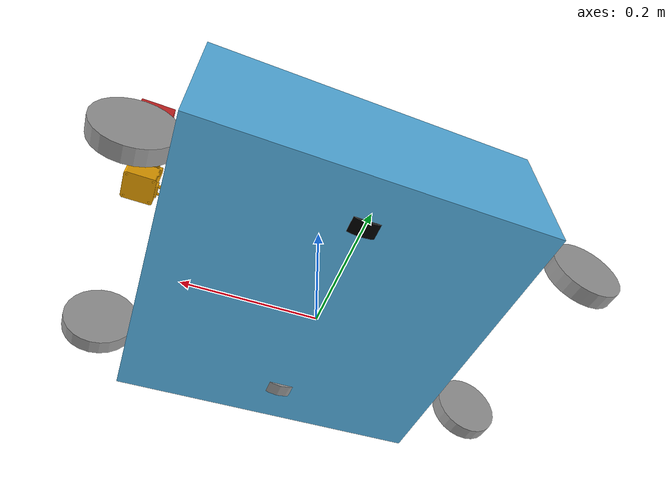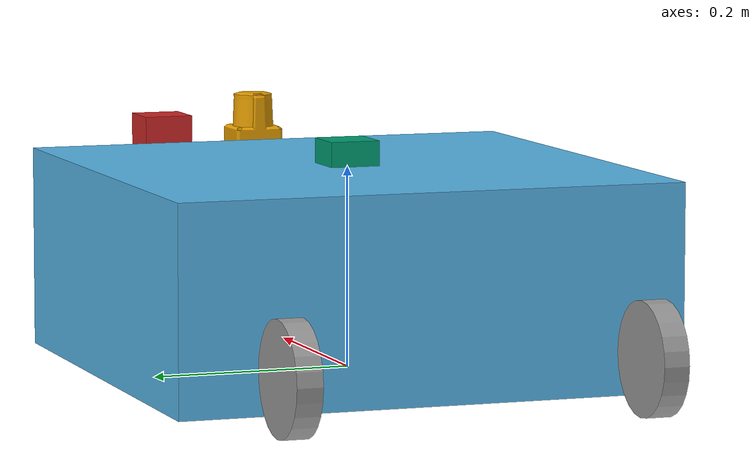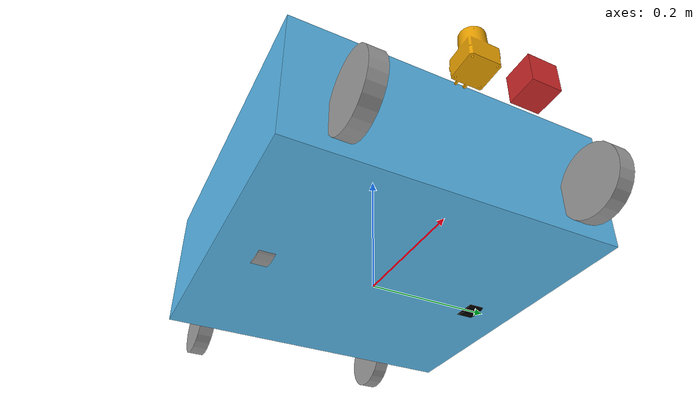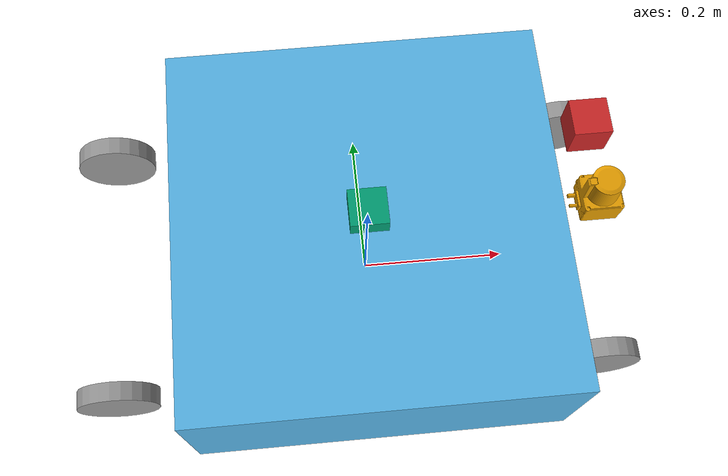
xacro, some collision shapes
<?xml version="1.0"?>
<!-- Revolute-Revolute Manipulator -->
<robot name="ugv" xmlns:xacro="http://www.ros.org/wiki/xacro">

  <!-- Constants for robot dimensions -->
  <xacro:property name="PI" value="3.1415926535897931"/>
  <xacro:property name="mass" value="5" />
  <xacro:property name="length" value="0.813" />
  <xacro:property name="width" value="0.5045" />
  <xacro:property name="height" value="0.202" />
  <xacro:property name="cylinder_length" value="0.025" />
  <xacro:property name="cylinder_radius" value="0.055" />
  <xacro:property name="width_diff" value="0.05" />
  <xacro:property name="height_diff" value="0.05" />
  <xacro:property name="length_diff" value="0.05" />

  <!-- Import all Gazebo-customization elements, including Gazebo colors -->
  <xacro:include filename="$(find testing)/urdf/ugv.gazebo" />
  <!-- Import Rviz colors -->
  <xacro:include filename="$(find testing)/urdf/materials.xacro" />

  <!-- Used for fixing robot to Gazebo 'base_link' -->
  <link name="odom"/>

  <joint name="footprint_joint" type="fixed">
    <origin xyz="0 0 0" rpy="0 0 0"/>
    <parent link="odom"/>
    <child link="chassis"/>
  </joint>

  <!-- Base Link -->
  <link name="chassis">
    <collision>
      <origin xyz="0 0 ${height/2.0}" rpy="0 0 0"/>
      <geometry>
	<box size="${width} ${width} ${height}"/>
      </geometry>
    </collision>

    <visual>
      <origin xyz="0 0 ${height/2.0}" rpy="0 0 0"/>
      <geometry>
        <mesh filename="package://testing/meshes/UGV.stl"/>
      </geometry>
    </visual>

    <inertial>
      <origin xyz="0 0 ${height/2.0}" rpy="0 0 0"/>
      <mass value="${mass}"/>
      <inertia
	  ixx="${mass / 12.0 * (width*width + height*height)}" ixy="0.0" ixz="0.0"
	  iyy="${mass / 12.0 * (height*height + width*width)}" iyz="0.0"
	  izz="${mass / 12.0 * (width*width + width*width)}"/>
    </inertial>
  </link>

  <!-- LEFT WHEEL -->
  <joint name="left_wheel_joint" type="continuous">
    <parent link="chassis"/>
    <child link="left_wheel"/>
    <origin xyz="0.0 ${width/2 - cylinder_length - width_diff} ${height/2 - height_diff}" rpy="0 0 0"/>
    <axis xyz="0 1 0"/>
    <dynamics damping="0.7"/>
  </joint>

  <link name="left_wheel">
    <collision>
      <origin xyz="0 0 0" rpy="${PI/2.0} 0 0"/>
      <geometry>
  	<cylinder radius="${cylinder_radius}" length="${cylinder_length}"/>
      </geometry>
    </collision>

    <visual>
      <origin xyz="0 0 0" rpy="${PI/2.0} 0 0"/>
      <geometry>
  	<cylinder radius="${cylinder_radius}" length="${cylinder_length}"/>
      </geometry>
      <material name="black"/>
    </visual>

    <inertial>
      <origin xyz="0 0 0" rpy="${PI/2.0} 0 0"/>
      <mass value="0.5"/>
      <inertia
  	  ixx="0.0" ixy="0.0" ixz="0.0" iyy="0.0" iyz="0.0" izz="0.0"/>
    </inertial>
  </link>

  <!-- RIGHT WHEEL -->
  <joint name="right_wheel_joint" type="continuous">
    <parent link="chassis"/>
    <child link="right_wheel"/>
    <origin xyz="0.0 ${-width/2 + cylinder_length + width_diff} ${height/2 - height_diff}" rpy="0 0 0"/>
    <axis xyz="0 1 0"/>
    <dynamics damping="0.7"/>
  </joint>

  <link name="right_wheel">
    <collision>
      <origin xyz="0 0 0" rpy="${PI/2.0} 0 0"/>
      <geometry>
  	<cylinder radius="${cylinder_radius}" length="${cylinder_length}"/>
      </geometry>
    </collision>

    <visual>
      <origin xyz="0 0 0" rpy="${PI/2.0} 0 0"/>
      <geometry>
  	<cylinder radius="${cylinder_radius}" length="${cylinder_length}"/>
      </geometry>
    </visual>

    <inertial>
      <origin xyz="0 0 0" rpy="${PI/2.0} 0 0"/>
      <mass value="0.5"/>
      <inertia
  	  ixx="0.0" ixy="0.0" ixz="0.0" iyy="0.0" iyz="0.0" izz="0.0"/>
    </inertial>
  </link>

  <!-- LEFT WHEEL FRONT -->
  <joint name="left_wheel_front_joint" type="continuous">
    <parent link="chassis"/>
    <child link="left_wheel_front"/>
    <origin xyz="${length/2 - cylinder_radius - length_diff} ${width/2 - cylinder_length - width_diff} ${height/2 - height_diff}" rpy="0 0 0"/>
    <axis xyz="0 1 0"/>
    <dynamics damping="0.7"/>
  </joint>

  <link name="left_wheel_front">
    <collision>
      <origin xyz="0 0 0" rpy="${PI/2.0} 0 0"/>
      <geometry>
  	<cylinder radius="${cylinder_radius}" length="${cylinder_length}"/>
      </geometry>
    </collision>

    <visual>
      <origin xyz="0 0 0" rpy="${PI/2.0} 0 0"/>
      <geometry>
  	<cylinder radius="${cylinder_radius}" length="${cylinder_length}"/>
      </geometry>
    </visual>

    <inertial>
      <origin xyz="0 0 0" rpy="${PI/2.0} 0 0"/>
      <mass value="0.5"/>
      <inertia
  	  ixx="0.0" ixy="0.0" ixz="0.0" iyy="0.0" iyz="0.0" izz="0.0"/>
    </inertial>
  </link>

  <!-- RIGHT WHEEL FRONT -->
  <joint name="right_wheel_front_joint" type="continuous">
    <parent link="chassis"/>
    <child link="right_wheel_front"/>
    <origin xyz="${length/2 - cylinder_radius - length_diff} ${-width/2 + cylinder_length + width_diff} ${height/2 - height_diff}" rpy="0 0 0"/>
    <axis xyz="0 1 0"/>
    <dynamics damping="0.7"/>
  </joint>

  <link name="right_wheel_front">
    <collision>
      <origin xyz="0 0 0" rpy="${PI/2.0} 0 0"/>
      <geometry>
  	<cylinder radius="${cylinder_radius}" length="${cylinder_length}"/>
      </geometry>
    </collision>

    <visual>
      <origin xyz="0 0 0" rpy="${PI/2.0} 0 0"/>
      <geometry>
  	<cylinder radius="${cylinder_radius}" length="${cylinder_length}"/>
      </geometry>
    </visual>

    <inertial>
      <origin xyz="0 0 0" rpy="${PI/2.0} 0 0"/>
      <mass value="0.5"/>
      <inertia
  	  ixx="0.0" ixy="0.0" ixz="0.0" iyy="0.0" iyz="0.0" izz="0.0"/>
    </inertial>
  </link>

  <!-- LEFT WHEEL BACK -->
  <joint name="left_wheel_back_joint" type="continuous">
    <parent link="chassis"/>
    <child link="left_wheel_back"/>
    <origin xyz="${-length/2 + cylinder_radius} ${width/2 - cylinder_length - width_diff} ${height/2 - height_diff}" rpy="0 0 0"/>
    <axis xyz="0 1 0"/>
    <dynamics damping="0.7"/>
  </joint>

  <link name="left_wheel_back">
    <collision>
      <origin xyz="0 0 0" rpy="${PI/2.0} 0 0"/>
      <geometry>
  	<cylinder radius="${cylinder_radius}" length="${cylinder_length}"/>
      </geometry>
    </collision>

    <visual>
      <origin xyz="0 0 0" rpy="${PI/2.0} 0 0"/>
      <geometry>
  	<cylinder radius="${cylinder_radius}" length="${cylinder_length}"/>
      </geometry>
    </visual>

    <inertial>
      <origin xyz="0 0 0" rpy="${PI/2.0} 0 0"/>
      <mass value="0.5"/>
      <inertia
  	  ixx="0.0" ixy="0.0" ixz="0.0" iyy="0.0" iyz="0.0" izz="0.0"/>
    </inertial>
  </link>

  <!-- RIGHT WHEEL BACK -->
  <joint name="right_wheel_back_joint" type="continuous">
    <parent link="chassis"/>
    <child link="right_wheel_back"/>
    <origin xyz="${-length/2 + cylinder_radius} ${-width/2 + cylinder_length + width_diff} ${height/2 - height_diff}" rpy="0 0 0"/>
    <axis xyz="0 1 0"/>
    <dynamics damping="0.7"/>
  </joint>

  <link name="right_wheel_back">
    <collision>
      <origin xyz="0 0 0" rpy="${PI/2.0} 0 0"/>
      <geometry>
  	<cylinder radius="${cylinder_radius}" length="${cylinder_length}"/>
      </geometry>
    </collision>

    <visual>
      <origin xyz="0 0 0" rpy="${PI/2.0} 0 0"/>
      <geometry>
  	<cylinder radius="${cylinder_radius}" length="${cylinder_length}"/>
      </geometry>
    </visual>

    <inertial>
      <origin xyz="0 0 0" rpy="${PI/2.0} 0 0"/>
      <mass value="0.5"/>
      <inertia
  	  ixx="0.0" ixy="0.0" ixz="0.0" iyy="0.0" iyz="0.0" izz="0.0"/>
    </inertial>
  </link>

  <!-- HOKUYO LASER -->
  <joint name="hokuyo_joint" type="fixed">
    <axis xyz="0 0 0" />
    <origin xyz="0.3 0 ${height + 0.025}" rpy="0 0 0"/>
    <parent link="chassis"/>
    <child link="hokuyo_link"/>
  </joint>

  <!-- Hokuyo Laser -->
  <link name="hokuyo_link">
    <collision>
      <origin xyz="0 0 -0.025" rpy="0 0 0"/>
      <geometry>
	<box size="0.051 0.051 0.07"/>
      </geometry>
    </collision>

    <visual>
      <origin xyz="0 0 -0.05" rpy="0 0 0"/>
      <geometry>
        <mesh filename="package://testing/meshes/Hokuyo.stl"/>
      </geometry>
    </visual>

    <inertial>
      <mass value="1e-5" />
      <origin xyz="0 0 -0.05" rpy="0 0 0"/>
      <inertia ixx="1e-6" ixy="0" ixz="0" iyy="1e-6" iyz="0" izz="1e-6" />
    </inertial>
  </link>

  <!-- CAMERA -->
  <joint name="camera_joint" type="fixed">
    <axis xyz="0 0 0" />
    <origin xyz="0.3 0.1 ${height}" rpy="0 0 0"/>
    <parent link="chassis"/>
    <child link="camera_link"/>
  </joint>

  <!-- Camera -->
  <link name="camera_link">
    <collision>
      <origin xyz="0 0 0" rpy="0 0 0"/>
      <geometry>
  	<box size="0.05 0.05 0.05"/>
      </geometry>
    </collision>

    <visual>
      <origin xyz="0 0 0" rpy="0 0 0"/>
      <geometry>
  	<box size="0.05 0.05 0.05"/>
      </geometry>
    </visual>

    <inertial>
      <mass value="1e-5" />
      <origin xyz="0 0 0" rpy="0 0 0"/>
      <inertia ixx="1e-6" ixy="0" ixz="0" iyy="1e-6" iyz="0" izz="1e-6" />
    </inertial>
  </link>

  <!-- IMU -->
  <joint name="imu_joint" type="fixed">
    <axis xyz="0 0 0" />
    <origin xyz="0 0 ${height}" rpy="0 0 0"/>
    <parent link="chassis"/>
    <child link="imu_link"/>
  </joint>

  <link name="imu_link">
    <collision>
      <origin xyz="0 0 0" rpy="0 0 0"/>
      <geometry>
  	<box size="0.05 0.05 0.05"/>
      </geometry>
    </collision>

    <visual>
      <origin xyz="0 0 0" rpy="0 0 0"/>
      <geometry>
  	<box size="0.05 0.05 0.05"/>
      </geometry>
    </visual>

    <inertial>
      <mass value="1e-5" />
      <origin xyz="0 0 0" rpy="0 0 0"/>
      <inertia ixx="1e-6" ixy="0" ixz="0" iyy="1e-6" iyz="0" izz="1e-6" />
    </inertial>
  </link>

  <!-- REFERENCES -->

  <gazebo reference="chassis">
    <visual>
      <material>
	<ambient>0.19225 0.19225 0.19225 1.0</ambient>
	<diffuse>0.50754 0.50754 0.50754 1.0</diffuse>
	<specular>0.508273 0.508273 0.508273 1.0</specular>
	<emissive>0.0 0.0 0.0 0.0</emissive>
      </material>
    </visual>
  </gazebo>

  <gazebo reference="left_wheel">
    <material>Gazebo/GreyTransparent</material>
    <mu1 value="10000.0" />
    <mu2 value="10000.0" />
  </gazebo>

  <gazebo reference="right_wheel">
    <material>Gazebo/GreyTransparent</material>
    <mu1 value="10000.0" />
    <mu2 value="10000.0" />
  </gazebo>

  <gazebo reference="left_wheel_front">
    <material>Gazebo/GreyTransparent</material>
    <mu1 value="0.0" />
    <mu2 value="0.0" />
  </gazebo>

  <gazebo reference="right_wheel_front">
    <material>Gazebo/GreyTransparent</material>
    <mu1 value="0.0" />
    <mu2 value="0.0" />
  </gazebo>

  <gazebo reference="left_wheel_back">
    <material>Gazebo/GreyTransparent</material>
    <mu1 value="0.0" />
    <mu2 value="0.0" />
  </gazebo>

  <gazebo reference="right_wheel_back">
    <material>Gazebo/GreyTransparent</material>
    <mu1 value="0.0" />
    <mu2 value="0.0" />
  </gazebo>

  <gazebo reference="camera_link">
    <material>Gazebo/Red</material>
  </gazebo>

  <!-- generate an optical frame http://www.ros.org/reps/rep-0103.html#suffix-frames
      so that ros and opencv can operate on the camera frame correctly -->
  <joint name="camera_optical_joint" type="fixed">
    <!-- these values have to be these values otherwise the gazebo camera image
        won't be aligned properly with the frame it is supposedly originating from -->
    <origin xyz="0 0 0" rpy="${-pi/2} 0 ${-pi/2}"/>
    <parent link="camera_link"/>
    <child link="camera_link_optical"/>
  </joint>

  <link name="camera_link_optical">
  </link>

  <transmission name="left_tran">
    <type>transmission_interface/SimpleTransmission</type>
    <joint name="left_wheel_joint">
      <hardwareInterface>VelocityJointInterface</hardwareInterface>
    </joint>
    <actuator name="left_actuator">
      <mechanicalReduction>1</mechanicalReduction>
    </actuator>
  </transmission>

  <transmission name="right_tran">
    <type>transmission_interface/SimpleTransmission</type>
    <joint name="right_wheel_joint">
      <hardwareInterface>VelocityJointInterface</hardwareInterface>
    </joint>
    <actuator name="right_actuator">
      <mechanicalReduction>1</mechanicalReduction>
    </actuator>
  </transmission>

</robot>

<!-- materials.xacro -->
<robot>

  <material name="black">
    <color rgba="0.0 0.0 0.0 1.0"/>
  </material>

  <material name="blue">
    <color rgba="0.0 0.0 0.8 1.0"/>
  </material>

  <material name="green">
    <color rgba="0.0 0.8 0.0 1.0"/>
  </material>

  <material name="grey">
    <color rgba="0.2 0.2 0.2 1.0"/>
  </material>

  <material name="orange">
    <color rgba="${255/255} ${108/255} ${10/255} 1.0"/>
  </material>

  <material name="brown">
    <color rgba="${222/255} ${207/255} ${195/255} 1.0"/>
  </material>

  <material name="red">
    <color rgba="0.8 0.0 0.0 1.0"/>
  </material>

  <material name="white">
    <color rgba="1.0 1.0 1.0 1.0"/>
  </material>

  <material name="transparent">
    <color rgba="0.0 0.0 0.0 0.0"/>
  </material>

</robot>
